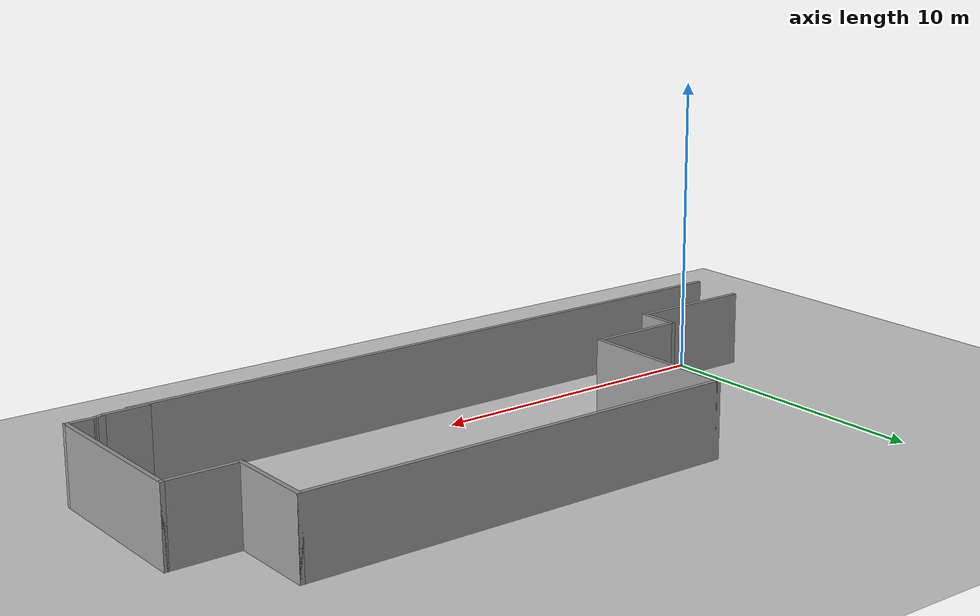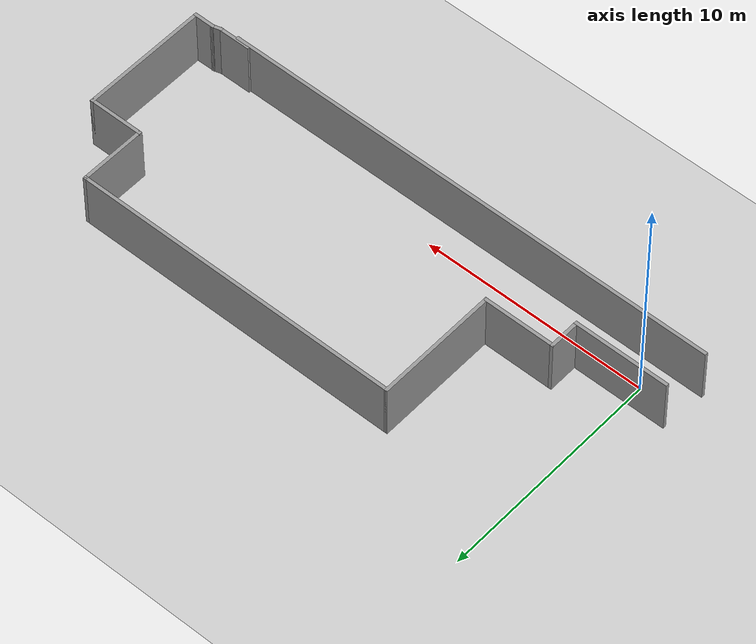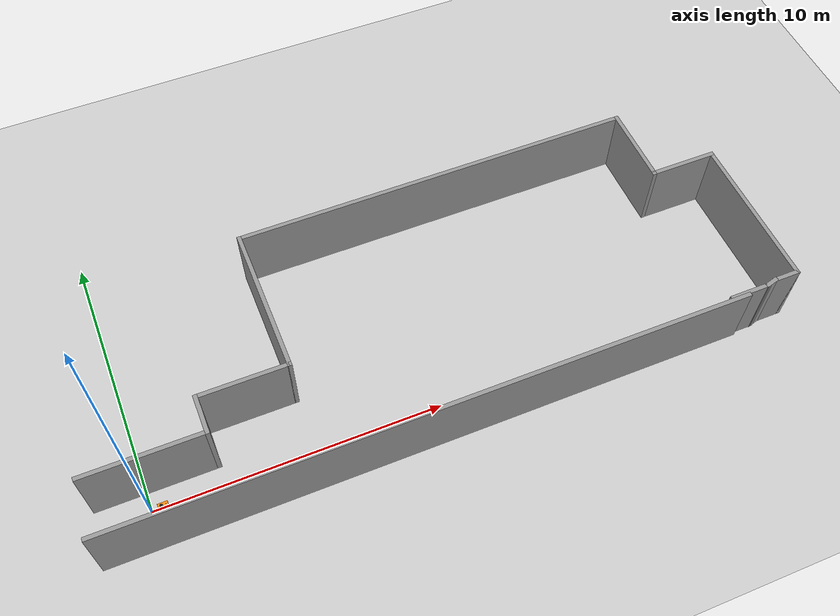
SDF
<sdf version="1.7">
 <world name="default">
  <light name="sun" type="directional">
   <pose>0 0 10 0 -0 0</pose>
   <diffuse>0.8 0.8 0.8 1</diffuse>
   <specular>0.2 0.2 0.2 1</specular>
   <attenuation>
    <range>1000</range>
    <constant>0.9</constant>
    <linear>0.01</linear>
    <quadratic>0.001</quadratic>
   </attenuation>
   <direction>-0.5 0.1 -0.9</direction>
   <spot><inner_angle>0</inner_angle><outer_angle>0</outer_angle><falloff>0</falloff></spot>
  </light>
  <model name="ground_plane">
   <static>1</static>
   <link name="link">
    <collision name="collision">
     <geometry><plane><normal>0 0 1</normal><size>100 100</size></plane></geometry>
     <surface><friction><ode><mu>100</mu><mu2>50</mu2></ode></friction></surface>
    </collision>
    <visual name="visual">
     <cast_shadows>0</cast_shadows>
     <geometry><plane><normal>0 0 1</normal><size>100 100</size></plane></geometry>
     <material>
      <script><uri>file://media/materials/scripts/gazebo.material</uri><name>Gazebo/Grey</name></script>
     </material>
    </visual>
   </link>
  </model>
  <gravity>0 0 -9.8</gravity>
  <magnetic_field>6e-06 2.3e-05 -4.2e-05</magnetic_field>
  <atmosphere type="adiabatic"/>
  <physics type="ode">
   <max_step_size>0.001</max_step_size>
   <real_time_factor>1</real_time_factor>
   <real_time_update_rate>1000</real_time_update_rate>
  </physics>
  <scene><ambient>0.4 0.4 0.4 1</ambient><background>0.7 0.7 0.7 1</background><shadows>1</shadows></scene>
  <audio><device>default</device></audio>
  <spherical_coordinates>
   <surface_model>EARTH_WGS84</surface_model>
   <latitude_deg>0</latitude_deg>
   <longitude_deg>0</longitude_deg>
   <elevation>0</elevation>
   <heading_deg>0</heading_deg>
  </spherical_coordinates>
  <model name="my_bot">
   <link name="base_link">
    <inertial>
     <pose>-0.067422 0 0.081089 0 -0 0</pose>
     <mass>0.610528</mass>
     <inertia>
      <ixx>0.0056101</ixx>
      <ixy>-5.36174e-09</ixy>
      <ixz>0.000454161</ixz>
      <iyy>0.00760557</iyy>
      <iyz>9.56503e-10</iyz>
      <izz>0.00797298</izz>
     </inertia>
    </inertial>
    <collision name="base_link_fixed_joint_lump__chassis_collision">
     <pose>-0.0585 0 0.059 0 -0 0</pose>
     <geometry><box><size>0.335 0.265 0.138</size></box></geometry>
    </collision>
    <collision name="base_link_fixed_joint_lump__caster_wheel_collision_1">
     <pose>-0.151 0 -0.023 0 -0 0</pose>
     <geometry><sphere><radius>0.01</radius></sphere></geometry>
     <surface><friction><ode><mu>0.001</mu><mu2>0.001</mu2></ode></friction></surface>
    </collision>
    <collision name="base_link_fixed_joint_lump__laser_frame_collision_2">
     <pose>-0.104 0 0.202 0 -0 0</pose>
     <geometry><cylinder><length>0.04</length><radius>0.05</radius></cylinder></geometry>
    </collision>
    <collision name="base_link_fixed_joint_lump__imu_link_collision_3">
     <pose>0 0 0.069899 0 -0 0</pose>
     <geometry><box><size>0.03 0.015 0.005</size></box></geometry>
    </collision>
    <visual name="base_link_fixed_joint_lump__chassis_visual">
     <pose>-0.0585 0 0.059 0 -0 0</pose>
     <geometry><box><size>0.335 0.265 0.138</size></box></geometry>
     <material>
      <script><name>Gazebo/Orange</name><uri>file://media/materials/scripts/gazebo.material</uri></script>
     </material>
    </visual>
    <visual name="base_link_fixed_joint_lump__camera_link_visual_1">
     <pose>0.05 0 0.171 0 -0 0</pose>
     <geometry><box><size>0.01 0.03 0.03</size></box></geometry>
     <material>
      <script><name>Gazebo/Black</name><uri>file://media/materials/scripts/gazebo.material</uri></script>
     </material>
    </visual>
    <visual name="base_link_fixed_joint_lump__camera_link_visual_2">
     <pose>0.05 0 0.121 0 -0 0</pose>
     <geometry><cylinder><length>0.1</length><radius>0.002</radius></cylinder></geometry>
     <material>
      <script><name>Gazebo/Black</name><uri>file://media/materials/scripts/gazebo.material</uri></script>
     </material>
    </visual>
    <visual name="base_link_fixed_joint_lump__caster_wheel_visual_3">
     <pose>-0.151 0 -0.023 0 -0 0</pose>
     <geometry><sphere><radius>0.01</radius></sphere></geometry>
     <material>
      <script><name>Gazebo/White</name><uri>file://media/materials/scripts/gazebo.material</uri></script>
     </material>
    </visual>
    <visual name="base_link_fixed_joint_lump__face_link_visual_4">
     <pose>0.109 0.05 0.069 3.14159 1.57079 3.14159</pose>
     <geometry><cylinder><length>0.002</length><radius>0.01</radius></cylinder></geometry>
     <material>
      <script><name>Gazebo/Black</name><uri>file://media/materials/scripts/gazebo.material</uri></script>
     </material>
    </visual>
    <visual name="base_link_fixed_joint_lump__face_link_visual_5">
     <pose>0.109 -0.05 0.069 3.14159 1.57079 3.14159</pose>
     <geometry><cylinder><length>0.002</length><radius>0.01</radius></cylinder></geometry>
     <material>
      <script><name>Gazebo/Black</name><uri>file://media/materials/scripts/gazebo.material</uri></script>
     </material>
    </visual>
    <visual name="base_link_fixed_joint_lump__face_link_visual_6">
     <pose>0.098 0 0.059 0 1.5 0</pose>
     <geometry><cylinder><length>0.02</length><radius>0.05</radius></cylinder></geometry>
     <material>
      <script><name>Gazebo/Black</name><uri>file://media/materials/scripts/gazebo.material</uri></script>
     </material>
    </visual>
    <visual name="base_link_fixed_joint_lump__laser_frame_visual_7">
     <pose>-0.104 0 0.202 0 -0 0</pose>
     <geometry><cylinder><length>0.04</length><radius>0.05</radius></cylinder></geometry>
     <material>
      <script><name>Gazebo/Black</name><uri>file://media/materials/scripts/gazebo.material</uri></script>
     </material>
    </visual>
    <visual name="base_link_fixed_joint_lump__laser_frame_visual_8">
     <pose>-0.104 0 0.152 0 -0 0</pose>
     <geometry><cylinder><length>0.1</length><radius>0.01</radius></cylinder></geometry>
     <material>
      <script><name>Gazebo/Black</name><uri>file://media/materials/scripts/gazebo.material</uri></script>
     </material>
    </visual>
    <visual name="base_link_fixed_joint_lump__imu_link_visual_9">
     <pose>0 0 0.069899 0 -0 0</pose>
     <geometry><box><size>0.03 0.015 0.005</size></box></geometry>
    </visual>
    <sensor name="camera" type="camera">
     <visualize>1</visualize>
     <update_rate>10</update_rate>
     <camera>
      <horizontal_fov>1.089</horizontal_fov>
      <image><format>R8G8B8</format><width>640</width><height>480</height></image>
      <clip><near>0.05</near><far>8</far></clip>
     </camera>
     <plugin name="camera_controller" filename="libgazebo_ros_camera.so">
      <frame_name>camera_link_optical</frame_name>
     </plugin>
     <pose>0.05 0 0.171 0 -0 0</pose>
    </sensor>
    <sensor name="laser" type="ray">
     <visualize>0</visualize>
     <update_rate>10</update_rate>
     <ray>
      <scan>
       <horizontal>
        <samples>360</samples>
        <min_angle>-3.14</min_angle>
        <max_angle>3.14</max_angle>
        <resolution>1</resolution>
       </horizontal>
       <vertical><samples>1</samples><min_angle>0</min_angle><max_angle>0</max_angle></vertical>
      </scan>
      <range><min>0.3</min><max>12</max></range>
     </ray>
     <plugin name="laser_controller" filename="libgazebo_ros_ray_sensor.so">
      <ros><argument>~/out:=scan</argument></ros>
      <output_type>sensor_msgs/LaserScan</output_type>
      <frame_name>laser_frame</frame_name>
     </plugin>
     <pose>-0.104 0 0.202 0 -0 0</pose>
    </sensor>
    <sensor name="imu" type="imu">
     <always_on>1</always_on>
     <update_rate>100</update_rate>
     <imu>
      <angular_velocity>
       <x><noise type="gaussian"><mean>0</mean><stddev>0.0002</stddev></noise></x>
       <y><noise type="gaussian"><mean>0</mean><stddev>0.0002</stddev></noise></y>
       <z><noise type="gaussian"><mean>0</mean><stddev>0.0002</stddev></noise></z>
      </angular_velocity>
      <linear_acceleration>
       <x><noise type="gaussian"><mean>0</mean><stddev>0.017</stddev></noise></x>
       <y><noise type="gaussian"><mean>0</mean><stddev>0.017</stddev></noise></y>
       <z><noise type="gaussian"><mean>0</mean><stddev>0.017</stddev></noise></z>
      </linear_acceleration>
     </imu>
     <plugin name="imu" filename="libgazebo_ros_imu_sensor.so"/>
     <pose>0 0 0.069899 0 -0 0</pose>
    </sensor>
   </link>
   <joint name="left_wheel_joint" type="revolute">
    <pose relative_to="base_link">0 0.172 0 -1.5708 0 0</pose>
    <parent>base_link</parent>
    <child>left_wheel</child>
    <axis>
     <xyz>0 0 1</xyz>
     <limit><lower>-1e+16</lower><upper>1e+16</upper></limit>
     <dynamics><spring_reference>0</spring_reference><spring_stiffness>0</spring_stiffness></dynamics>
    </axis>
   </joint>
   <link name="left_wheel">
    <pose relative_to="left_wheel_joint">0 0 0 0 -0 0</pose>
    <inertial>
     <mass>0.05</mass>
     <inertia>
      <ixx>1.64292e-05</ixx>
      <ixy>0</ixy>
      <ixz>0</ixz>
      <iyy>1.64292e-05</iyy>
      <iyz>0</iyz>
      <izz>2.7225e-05</izz>
     </inertia>
    </inertial>
    <collision name="left_wheel_collision">
     <geometry><sphere><radius>0.033</radius></sphere></geometry>
    </collision>
    <visual name="left_wheel_visual">
     <geometry><cylinder><length>0.026</length><radius>0.033</radius></cylinder></geometry>
     <material>
      <script><name>Gazebo/Blue</name><uri>file://media/materials/scripts/gazebo.material</uri></script>
     </material>
    </visual>
   </link>
   <joint name="right_wheel_joint" type="revolute">
    <pose relative_to="base_link">0 -0.172 0 1.5708 -0 0</pose>
    <parent>base_link</parent>
    <child>right_wheel</child>
    <axis>
     <xyz>0 0 -1</xyz>
     <limit><lower>-1e+16</lower><upper>1e+16</upper></limit>
     <dynamics><spring_reference>0</spring_reference><spring_stiffness>0</spring_stiffness></dynamics>
    </axis>
   </joint>
   <link name="right_wheel">
    <pose relative_to="right_wheel_joint">0 0 0 0 -0 0</pose>
    <inertial>
     <mass>0.05</mass>
     <inertia>
      <ixx>1.64292e-05</ixx>
      <ixy>0</ixy>
      <ixz>0</ixz>
      <iyy>1.64292e-05</iyy>
      <iyz>0</iyz>
      <izz>2.7225e-05</izz>
     </inertia>
    </inertial>
    <collision name="right_wheel_collision">
     <geometry><sphere><radius>0.033</radius></sphere></geometry>
    </collision>
    <visual name="right_wheel_visual">
     <geometry><cylinder><length>0.026</length><radius>0.033</radius></cylinder></geometry>
     <material>
      <script><name>Gazebo/Blue</name><uri>file://media/materials/scripts/gazebo.material</uri></script>
     </material>
    </visual>
   </link>
   <static>0</static>
   <plugin name="gazebo_ros2_control" filename="libgazebo_ros2_control.so">
    <parameters>/home/moh/dev_ws/install/articubot_one/share/articubot_one/config/my_controllers.yaml</parameters>
   </plugin>
   <pose>0.443986 0.003336 0.032997 -1.8e-05 2.2e-05 0.010137</pose>
  </model>
  <model name="parcourt">
   <pose>9.90551 3.08836 0 0 -0 0</pose>
   <link name="Wall_0">
    <collision name="Wall_0_Collision">
     <geometry><box><size>4.25 0.15 2.5</size></box></geometry>
     <pose>0 0 1.25 0 -0 0</pose>
    </collision>
    <visual name="Wall_0_Visual">
     <pose>0 0 1.25 0 -0 0</pose>
     <geometry><box><size>4.25 0.15 2.5</size></box></geometry>
     <material>
      <script><uri>file://media/materials/scripts/gazebo.material</uri><name>Gazebo/Grey</name></script>
      <ambient>1 1 1 1</ambient>
     </material>
     <meta><layer>0</layer></meta>
    </visual>
    <pose>-9.5075 -2.345 0 0 -0 0</pose>
   </link>
   <link name="Wall_1">
    <collision name="Wall_1_Collision">
     <geometry><box><size>1.46004 0.15 2.5</size></box></geometry>
     <pose>0 0 1.25 0 -0 0</pose>
    </collision>
    <visual name="Wall_1_Visual">
     <pose>0 0 1.25 0 -0 0</pose>
     <geometry><box><size>1.46004 0.15 2.5</size></box></geometry>
     <material>
      <script><uri>file://media/materials/scripts/gazebo.material</uri><name>Gazebo/Grey</name></script>
      <ambient>1 1 1 1</ambient>
     </material>
     <meta><layer>0</layer></meta>
    </visual>
    <pose>-7.4575 -1.69 0 0 -0 1.5708</pose>
   </link>
   <link name="Wall_10">
    <collision name="Wall_10_Collision">
     <geometry><box><size>5.75 0.15 2.5</size></box></geometry>
     <pose>0 0 1.25 0 -0 0</pose>
    </collision>
    <visual name="Wall_10_Visual">
     <pose>0 0 1.25 0 -0 0</pose>
     <geometry><box><size>5.75 0.15 2.5</size></box></geometry>
     <material>
      <script><uri>file://media/materials/scripts/gazebo.material</uri><name>Gazebo/Grey</name></script>
      <ambient>1 1 1 1</ambient>
     </material>
     <meta><layer>0</layer></meta>
    </visual>
    <pose>12.6025 -1.335 0 0 -0 -1.5708</pose>
   </link>
   <link name="Wall_11">
    <collision name="Wall_11_Collision">
     <geometry><box><size>1 0.15 2.5</size></box></geometry>
     <pose>0 0 1.25 0 -0 0</pose>
    </collision>
    <visual name="Wall_11_Visual">
     <pose>0 0 1.25 0 -0 0</pose>
     <geometry><box><size>1 0.15 2.5</size></box></geometry>
     <material>
      <script><uri>file://media/materials/scripts/gazebo.material</uri><name>Gazebo/Grey</name></script>
      <ambient>1 1 1 1</ambient>
     </material>
     <meta><layer>0</layer></meta>
    </visual>
    <pose>12.1775 -4.135 0 0 -0 3.14159</pose>
   </link>
   <link name="Wall_12">
    <collision name="Wall_12_Collision">
     <geometry><box><size>0.5 0.15 2.5</size></box></geometry>
     <pose>0 0 1.25 0 -0 0</pose>
    </collision>
    <visual name="Wall_12_Visual">
     <pose>0 0 1.25 0 -0 0</pose>
     <geometry><box><size>0.5 0.15 2.5</size></box></geometry>
     <material>
      <script><uri>file://media/materials/scripts/gazebo.material</uri><name>Gazebo/Grey</name></script>
      <ambient>1 1 1 1</ambient>
     </material>
     <meta><layer>0</layer></meta>
    </visual>
    <pose>11.5835 -4.18029 0 0 -0 -2.87979</pose>
   </link>
   <link name="Wall_13">
    <collision name="Wall_13_Collision">
     <geometry><box><size>1.5 0.15 2.5</size></box></geometry>
     <pose>0 0 1.25 0 -0 0</pose>
    </collision>
    <visual name="Wall_13_Visual">
     <pose>0 0 1.25 0 -0 0</pose>
     <geometry><box><size>1.5 0.15 2.5</size></box></geometry>
     <material>
      <script><uri>file://media/materials/scripts/gazebo.material</uri><name>Gazebo/Grey</name></script>
      <ambient>1 1 1 1</ambient>
     </material>
     <meta><layer>0</layer></meta>
    </visual>
    <pose>10.7394 -4.22559 0 0 -0 3.14159</pose>
   </link>
   <link name="Wall_2">
    <collision name="Wall_2_Collision">
     <geometry><box><size>3.25 0.15 2.5</size></box></geometry>
     <pose>0 0 1.25 0 -0 0</pose>
    </collision>
    <visual name="Wall_2_Visual">
     <pose>0 0 1.25 0 -0 0</pose>
     <geometry><box><size>3.25 0.15 2.5</size></box></geometry>
     <material>
      <script><uri>file://media/materials/scripts/gazebo.material</uri><name>Gazebo/Grey</name></script>
      <ambient>1 1 1 1</ambient>
     </material>
     <meta><layer>0</layer></meta>
    </visual>
    <pose>-5.8975 -1.035 0 0 -0 0</pose>
   </link>
   <link name="Wall_4">
    <collision name="Wall_4_Collision">
     <geometry><box><size>22.5 0.15 2.5</size></box></geometry>
     <pose>0 0 1.25 0 -0 0</pose>
    </collision>
    <visual name="Wall_4_Visual">
     <pose>0 0 1.25 0 -0 0</pose>
     <geometry><box><size>22.5 0.15 2.5</size></box></geometry>
     <material>
      <script><uri>file://media/materials/scripts/gazebo.material</uri><name>Gazebo/Grey</name></script>
      <ambient>1 1 1 1</ambient>
     </material>
     <meta><layer>0</layer></meta>
    </visual>
    <pose>-0.552501 -4.315 0 0 -0 0</pose>
   </link>
   <link name="Wall_6">
    <collision name="Wall_6_Collision">
     <geometry><box><size>5.5 0.15 2.5</size></box></geometry>
     <pose>0 0 1.25 0 -0 0</pose>
    </collision>
    <visual name="Wall_6_Visual">
     <pose>0 0 1.25 0 -0 0</pose>
     <geometry><box><size>5.5 0.15 2.5</size></box></geometry>
     <material>
      <script><uri>file://media/materials/scripts/gazebo.material</uri><name>Gazebo/Grey</name></script>
      <ambient>1 1 1 1</ambient>
     </material>
     <meta><layer>0</layer></meta>
    </visual>
    <pose>-4.3475 1.64 0 0 -0 1.5708</pose>
   </link>
   <link name="Wall_7">
    <collision name="Wall_7_Collision">
     <geometry><box><size>14.75 0.15 2.5</size></box></geometry>
     <pose>0 0 1.25 0 -0 0</pose>
    </collision>
    <visual name="Wall_7_Visual">
     <pose>0 0 1.25 0 -0 0</pose>
     <geometry><box><size>14.75 0.15 2.5</size></box></geometry>
     <material>
      <script><uri>file://media/materials/scripts/gazebo.material</uri><name>Gazebo/Grey</name></script>
      <ambient>1 1 1 1</ambient>
     </material>
     <meta><layer>0</layer></meta>
    </visual>
    <pose>2.9525 4.315 0 0 -0 0</pose>
   </link>
   <link name="Wall_8">
    <collision name="Wall_8_Collision">
     <geometry><box><size>3 0.15 2.5</size></box></geometry>
     <pose>0 0 1.25 0 -0 0</pose>
    </collision>
    <visual name="Wall_8_Visual">
     <pose>0 0 1.25 0 -0 0</pose>
     <geometry><box><size>3 0.15 2.5</size></box></geometry>
     <material>
      <script><uri>file://media/materials/scripts/gazebo.material</uri><name>Gazebo/Grey</name></script>
      <ambient>1 1 1 1</ambient>
     </material>
     <meta><layer>0</layer></meta>
    </visual>
    <pose>10.2525 2.89 0 0 -0 -1.5708</pose>
   </link>
   <link name="Wall_9">
    <collision name="Wall_9_Collision">
     <geometry><box><size>2.5 0.15 2.5</size></box></geometry>
     <pose>0 0 1.25 0 -0 0</pose>
    </collision>
    <visual name="Wall_9_Visual">
     <pose>0 0 1.25 0 -0 0</pose>
     <geometry><box><size>2.5 0.15 2.5</size></box></geometry>
     <material>
      <script><uri>file://media/materials/scripts/gazebo.material</uri><name>Gazebo/Grey</name></script>
      <ambient>1 1 1 1</ambient>
     </material>
     <meta><layer>0</layer></meta>
    </visual>
    <pose>11.4275 1.465 0 0 -0 0</pose>
   </link>
   <static>1</static>
  </model>
 </world>
</sdf>
